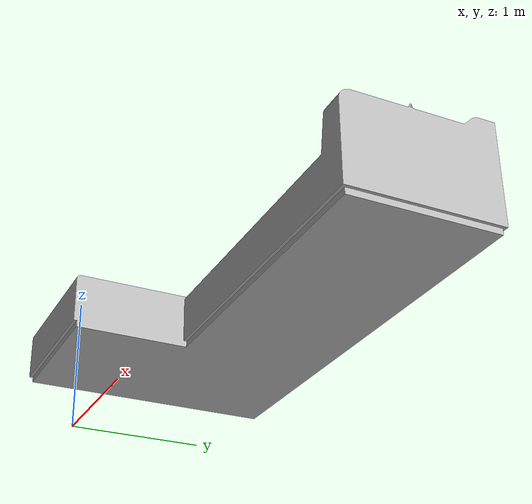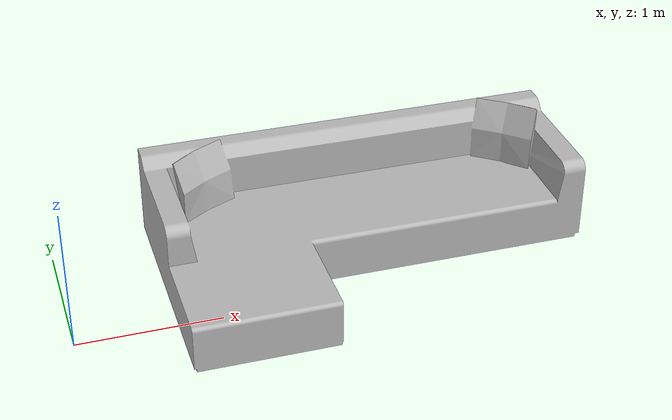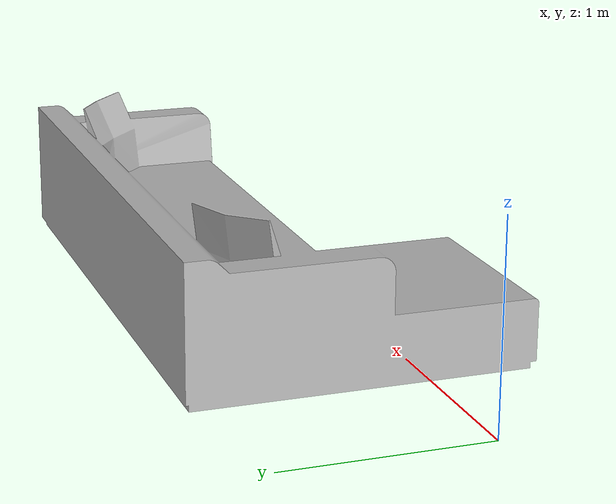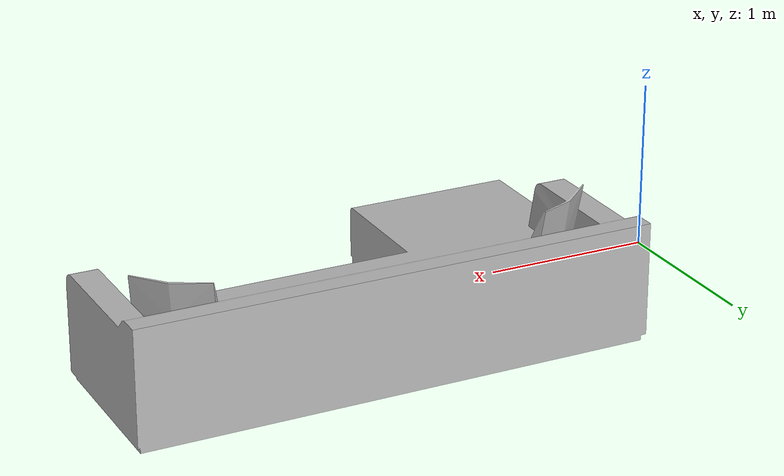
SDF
<sdf version="1.4">
  <model name="large couch">
    <static>1</static>
    <link name="link">
      <collision name="colision">
        <pose>0 0 0 0 0 0</pose>
        <geometry>
          <mesh>
            <uri>model://large_couch/meshes/large_couch.min.dae</uri>
            <scale> 1 1 1 </scale>
          </mesh>
        </geometry>
        <surface>
          <bounce />
          <friction>
            <ode />
          </friction>
          <contact>
            <ode />
          </contact>
        </surface>
      </collision>

      <visual name="visual">
        <pose>0 0 0 0 0 0</pose>
        <geometry>
          <mesh>
            <uri>model://large_couch/meshes/large_couch.dae</uri>
            <scale> 1 1 1 </scale>
          </mesh>
        </geometry>
      </visual>

      <velocity_decay>
        <linear>0.000000</linear>
        <angular>0.000000</angular>
      </velocity_decay>
      <self_collide>0</self_collide>
      <kinematic>0</kinematic>
      <gravity>1</gravity>
    </link>
  </model>
</sdf>
